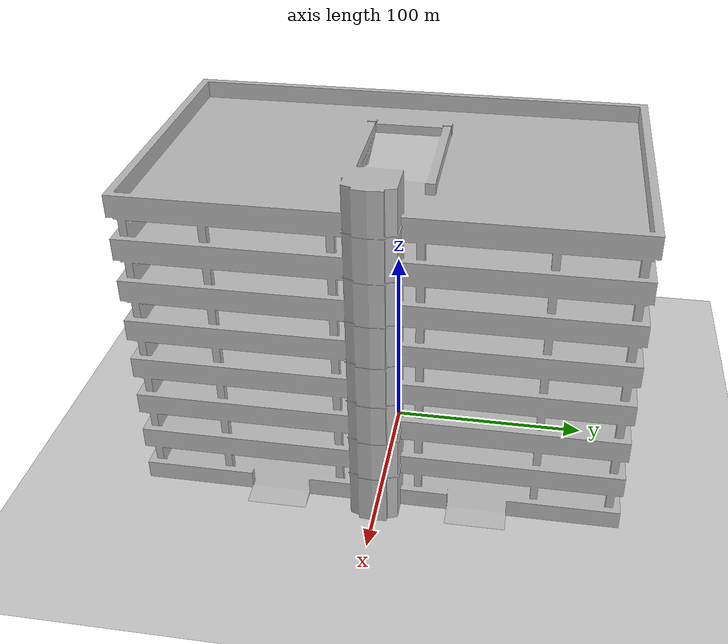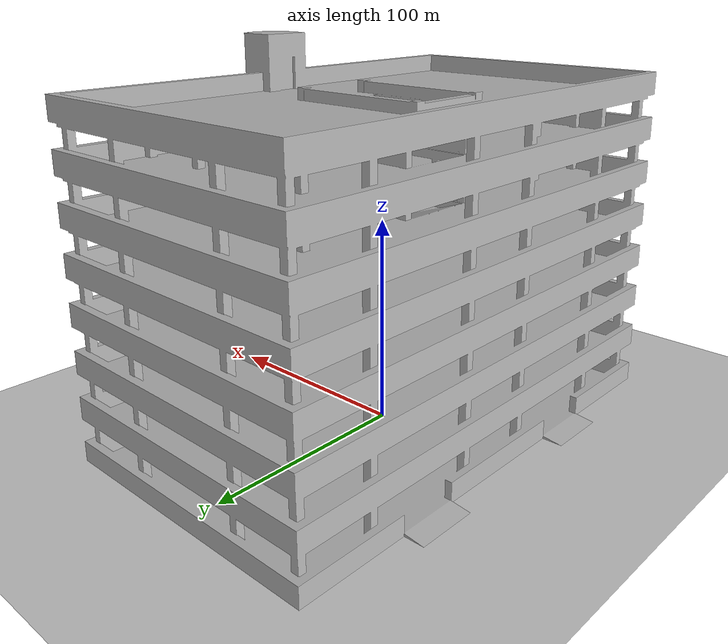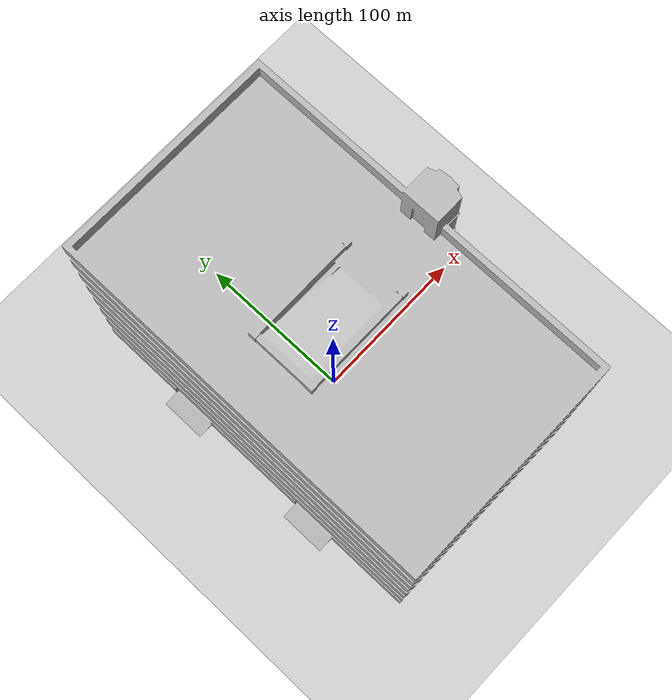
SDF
<?xml version="1.0" ?>
<sdf version="1.6">
  <world name="multi_level_parking">

    <plugin filename="gz-sim-physics-system" name="gz::sim::systems::Physics"/>
    <plugin filename="gz-sim-user-commands-system" name="gz::sim::systems::UserCommands"/>
    <plugin filename="gz-sim-scene-broadcaster-system" name="gz::sim::systems::SceneBroadcaster"/>
    <plugin filename="gz-sim-contact-system" name="gz::sim::systems::Contact"/>
    <plugin filename="gz-sim-imu-system" name="gz::sim::systems::Imu"/>
    <plugin filename="gz-sim-air-pressure-system" name="gz::sim::systems::AirPressure"/>

    <plugin
      filename="gz-sim-sensors-system"
      name="gz::sim::systems::Sensors">
      <render_engine>ogre2</render_engine>
    </plugin>

    <physics type="ode">
      <max_step_size>0.001</max_step_size>
      <real_time_factor>1</real_time_factor>
      <real_time_update_rate>1000</real_time_update_rate>
      <ode>
        <constraints>
          <contact_surface_layer>0.001</contact_surface_layer>
        </constraints>
     </ode>
    </physics>

    <light name="sun" type="directional">
      <cast_shadows>true</cast_shadows>
      <pose>0 0 10 0 0 0</pose>
      <direction>-0.5 0.1 -0.9</direction>
    </light>

    <model name="ground_plane">
      <static>true</static>
      <link name="link">
        <collision name="collision">
          <geometry><plane><normal>0 0 1</normal><size>100 100</size></plane></geometry>
          <surface>
            <friction>
              <ode><mu>100</mu><mu2>50</mu2></ode>
            </friction>
            <contact>
              <ode>
                <kp>1e15</kp> <kd>1e13</kd> </ode>
            </contact>
          </surface>
        </collision>
        <visual name="visual">
          <geometry><plane><normal>0 0 1</normal><size>100 100</size></plane></geometry>
          <material><ambient>0.8 0.8 0.8 1</ambient><diffuse>0.8 0.8 0.8 1</diffuse></material>
        </visual>
      </link>
    </model>

    <model name="parking_garage">
      <static>true</static>
      <link name="garage">
        <pose>0 0 0 0 0 1.5708</pose>

        <collision name="collision_garage">
          <geometry>
            <mesh>
              <uri>package://ackermann_robot/meshes/parking_garage.dae</uri>
              <scale>0.1 0.1 0.1</scale>
            </mesh>
          </geometry>
          <surface>
            <contact>
              <ode>
                <kp>1e15</kp> <kd>1e13</kd> </ode>
            </contact>
            <friction>
              <ode>
                <mu>100</mu>
                <mu2>50</mu2>
              </ode>
            </friction>
          </surface>
          <laser_retro>100</laser_retro>
        </collision>

        <visual name="visual_garage">
          <geometry>
            <mesh>
              <uri>package://ackermann_robot/meshes/parking_garage.dae</uri>
              <scale>0.1 0.1 0.1</scale>
            </mesh>
          </geometry>
        </visual>
      </link>
    </model>

    <model name="ground_reference_station">
      <static>true</static>
      <pose>0 0 0.2 0 0 0</pose>
      <link name="link">
        <visual name="visual">
          <geometry><box><size>0.1 0.1 0.1</size></box></geometry>
          <material>
            <ambient>0 1 0 1</ambient>
            <diffuse>0 1 0 1</diffuse>
          </material>
        </visual>
        <sensor name="air_pressure_sensor" type="air_pressure">
          <always_on>1</always_on>
          <update_rate>10</update_rate>
          <visualize>true</visualize>
          <topic>/env/reference_pressure</topic>
          <air_pressure>
            <pressure>
              <noise type="gaussian">
                <mean>0</mean>
                <stddev>0.01</stddev>
              </noise>
            </pressure>
          </air_pressure>
        </sensor>
      </link>
    </model>
  </world>
</sdf>
